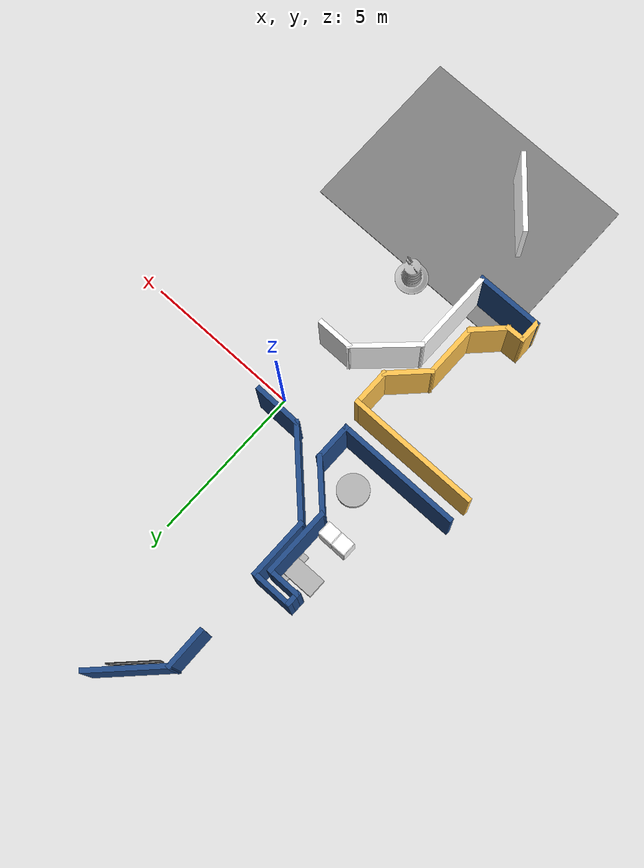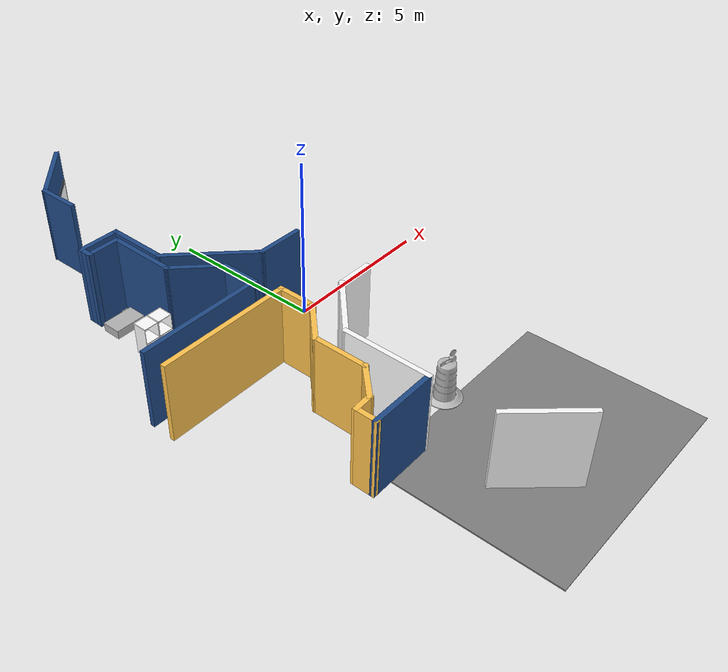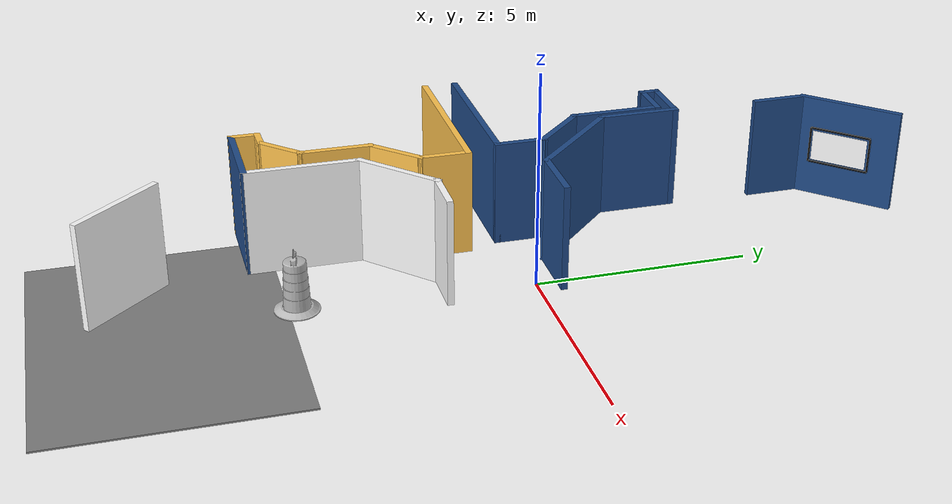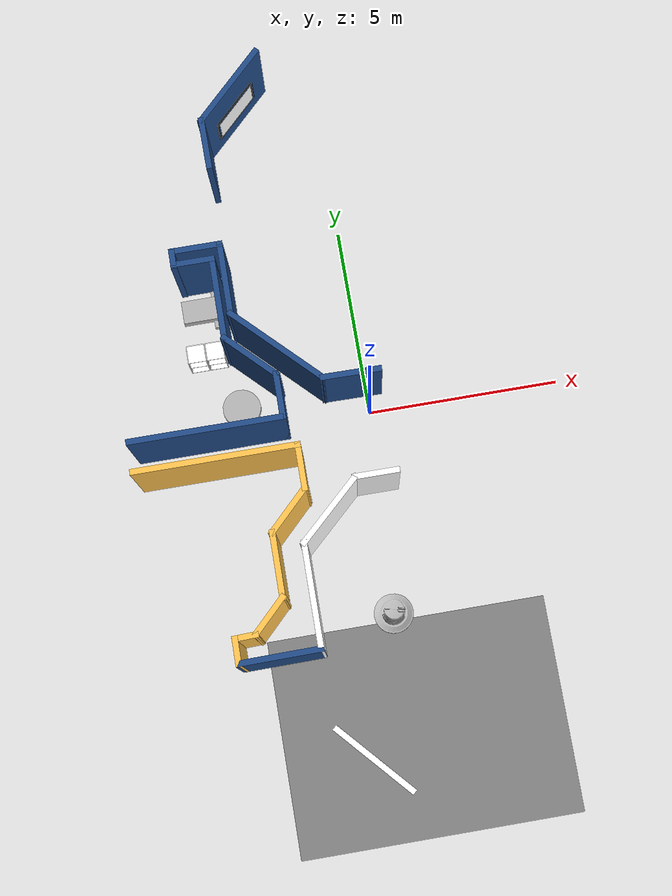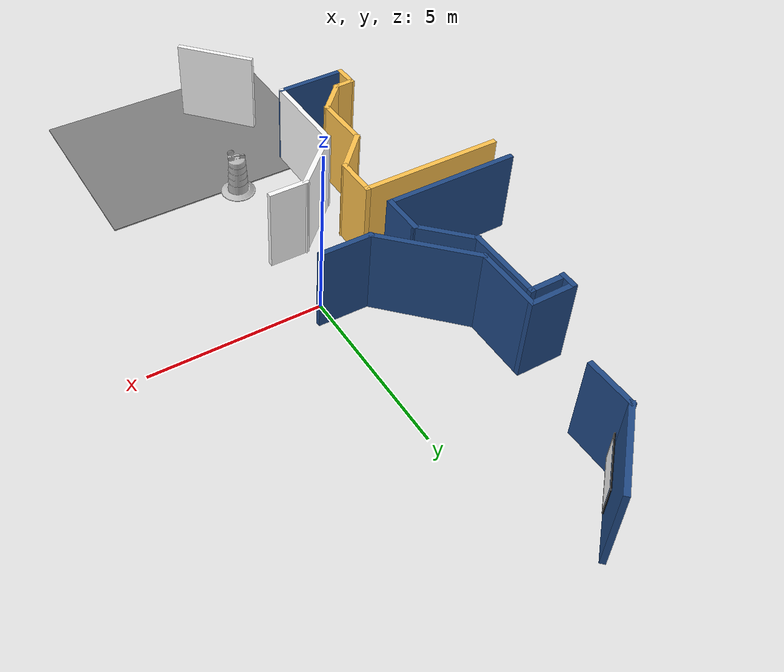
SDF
<sdf version="1.7">
 <world name="default">
  <model name="among_us_world">
   <pose>0.133216 -0.12311 0 0 -0 0</pose>
   <link name="Wall_104">
    <collision name="Wall_104_Collision">
     <geometry><box><size>4 0.15 2.5</size></box></geometry>
     <pose>0 0 1.25 0 -0 0</pose>
    </collision>
    <visual name="Wall_104_Visual">
     <pose>0 0 1.25 0 -0 0</pose>
     <geometry><box><size>4 0.15 2.5</size></box></geometry>
     <material>
      <ambient>0.12549 0.290196 0.529412 1</ambient>
      <diffuse>0.12549 0.290196 0.529412 1</diffuse>
      <specular>0.08 0.08 0.08 1</specular>
      <emissive>0 0 0 1</emissive>
      <pbr>
       <metal>
        <albedo_map>model://among_us_world/materials/textures/ceiling_tiled_32_74_135.jpg</albedo_map>
        <roughness>0.85</roughness>
        <metalness>0</metalness>
       </metal>
      </pbr>
     </material>
     <meta><layer>0</layer></meta>
    </visual>
    <pose>-4.28169 -0.147272 0 0 -0 0</pose>
   </link>
   <link name="Wall_105">
    <collision name="Wall_105_Collision">
     <geometry><box><size>1.25 0.15 2.5</size></box></geometry>
     <pose>0 0 1.25 0 -0 0</pose>
    </collision>
    <visual name="Wall_105_Visual">
     <pose>0 0 1.25 0 -0 0</pose>
     <geometry><box><size>1.25 0.15 2.5</size></box></geometry>
     <material>
      <ambient>0.12549 0.290196 0.529412 1</ambient>
      <diffuse>0.12549 0.290196 0.529412 1</diffuse>
      <specular>0.08 0.08 0.08 1</specular>
      <emissive>0 0 0 1</emissive>
      <pbr>
       <metal>
        <albedo_map>model://among_us_world/materials/textures/ceiling_tiled_32_74_135.jpg</albedo_map>
        <roughness>0.85</roughness>
        <metalness>0</metalness>
       </metal>
      </pbr>
     </material>
     <meta><layer>0</layer></meta>
    </visual>
    <pose>-2.35669 0.402728 0 0 -0 1.5708</pose>
   </link>
   <link name="Wall_106">
    <collision name="Wall_106_Collision">
     <geometry><box><size>1.75 0.15 2.5</size></box></geometry>
     <pose>0 0 1.25 0 -0 0</pose>
    </collision>
    <visual name="Wall_106_Visual">
     <pose>0 0 1.25 0 -0 0</pose>
     <geometry><box><size>1.75 0.15 2.5</size></box></geometry>
     <material>
      <ambient>0.12549 0.290196 0.529412 1</ambient>
      <diffuse>0.12549 0.290196 0.529412 1</diffuse>
      <specular>0.08 0.08 0.08 1</specular>
      <emissive>0 0 0 1</emissive>
      <pbr>
       <metal>
        <albedo_map>model://among_us_world/materials/textures/ceiling_tiled_32_74_135.jpg</albedo_map>
        <roughness>0.85</roughness>
        <metalness>0</metalness>
       </metal>
      </pbr>
     </material>
     <meta><layer>0</layer></meta>
    </visual>
    <pose>-2.92238 1.51841 0 0 -0 2.35619</pose>
   </link>
   <link name="Wall_108">
    <collision name="Wall_108_Collision">
     <geometry><box><size>2.25 0.15 2.5</size></box></geometry>
     <pose>0 0 1.25 0 -0 0</pose>
    </collision>
    <visual name="Wall_108_Visual">
     <pose>0 0 1.25 0 -0 0</pose>
     <geometry><box><size>2.25 0.15 2.5</size></box></geometry>
     <material>
      <ambient>0.12549 0.290196 0.529412 1</ambient>
      <diffuse>0.12549 0.290196 0.529412 1</diffuse>
      <specular>0.08 0.08 0.08 1</specular>
      <emissive>0 0 0 1</emissive>
      <pbr>
       <metal>
        <albedo_map>model://among_us_world/materials/textures/ceiling_tiled_32_74_135.jpg</albedo_map>
        <roughness>0.85</roughness>
        <metalness>0</metalness>
       </metal>
      </pbr>
     </material>
     <meta><layer>0</layer></meta>
    </visual>
    <pose>-3.48806 3.1341 0 0 -0 1.5708</pose>
   </link>
   <link name="Wall_109">
    <collision name="Wall_109_Collision">
     <geometry><box><size>1.12677 0.15 2.5</size></box></geometry>
     <pose>0 0 1.25 0 -0 0</pose>
    </collision>
    <visual name="Wall_109_Visual">
     <pose>0 0 1.25 0 -0 0</pose>
     <geometry><box><size>1.12677 0.15 2.5</size></box></geometry>
     <material>
      <ambient>0.12549 0.290196 0.529412 1</ambient>
      <diffuse>0.12549 0.290196 0.529412 1</diffuse>
      <specular>0.08 0.08 0.08 1</specular>
      <emissive>0 0 0 1</emissive>
      <pbr>
       <metal>
        <albedo_map>model://among_us_world/materials/textures/ceiling_tiled_32_74_135.jpg</albedo_map>
        <roughness>0.85</roughness>
        <metalness>0</metalness>
       </metal>
      </pbr>
     </material>
     <meta><layer>0</layer></meta>
    </visual>
    <pose>-3.97634 4.1841 0 0 -0 3.14159</pose>
   </link>
   <link name="Wall_110">
    <collision name="Wall_110_Collision">
     <geometry><box><size>0.5 0.15 2.5</size></box></geometry>
     <pose>0 0 1.25 0 -0 0</pose>
    </collision>
    <visual name="Wall_110_Visual">
     <pose>0 0 1.25 0 -0 0</pose>
     <geometry><box><size>0.5 0.15 2.5</size></box></geometry>
     <material>
      <ambient>0.12549 0.290196 0.529412 1</ambient>
      <diffuse>0.12549 0.290196 0.529412 1</diffuse>
      <specular>0.08 0.08 0.08 1</specular>
      <emissive>0 0 0 1</emissive>
      <pbr><metal><roughness>0.85</roughness><metalness>0</metalness></metal></pbr>
     </material>
     <meta><layer>0</layer></meta>
    </visual>
    <pose>-4.46462 4.33852 0 0 -0 1.5708</pose>
   </link>
   <link name="Wall_111">
    <collision name="Wall_111_Collision">
     <geometry><box><size>1.37673 0.15 2.5</size></box></geometry>
     <pose>0 0 1.25 0 -0 0</pose>
    </collision>
    <visual name="Wall_111_Visual">
     <pose>0 0 1.25 0 -0 0</pose>
     <geometry><box><size>1.37673 0.15 2.5</size></box></geometry>
     <material>
      <ambient>0.12549 0.290196 0.529412 1</ambient>
      <diffuse>0.12549 0.290196 0.529412 1</diffuse>
      <specular>0.08 0.08 0.08 1</specular>
      <emissive>0 0 0 1</emissive>
      <pbr>
       <metal>
        <albedo_map>model://asphalt_plane/materials/textures/tarmac.png</albedo_map>
        <roughness>0.85</roughness>
        <metalness>0</metalness>
       </metal>
      </pbr>
     </material>
     <meta><layer>0</layer></meta>
    </visual>
    <pose>-3.85134 4.5341 0 0 -0 0</pose>
   </link>
   <link name="Wall_112">
    <collision name="Wall_112_Collision">
     <geometry><box><size>2 0.15 2.5</size></box></geometry>
     <pose>0 0 1.25 0 -0 0</pose>
    </collision>
    <visual name="Wall_112_Visual">
     <pose>0 0 1.25 0 -0 0</pose>
     <geometry><box><size>2 0.15 2.5</size></box></geometry>
     <material>
      <ambient>0.12549 0.290196 0.529412 1</ambient>
      <diffuse>0.12549 0.290196 0.529412 1</diffuse>
      <specular>0.08 0.08 0.08 1</specular>
      <emissive>0 0 0 1</emissive>
      <pbr>
       <metal>
        <albedo_map>model://asphalt_plane/materials/textures/tarmac.png</albedo_map>
        <roughness>0.85</roughness>
        <metalness>0</metalness>
       </metal>
      </pbr>
     </material>
     <meta><layer>0</layer></meta>
    </visual>
    <pose>-3.23806 3.6091 0 0 -0 -1.5708</pose>
   </link>
   <link name="Wall_114">
    <collision name="Wall_114_Collision">
     <geometry><box><size>3 0.15 2.5</size></box></geometry>
     <pose>0 0 1.25 0 -0 0</pose>
    </collision>
    <visual name="Wall_114_Visual">
     <pose>0 0 1.25 0 -0 0</pose>
     <geometry><box><size>3 0.15 2.5</size></box></geometry>
     <material>
      <ambient>0.12549 0.290196 0.529412 1</ambient>
      <diffuse>0.12549 0.290196 0.529412 1</diffuse>
      <specular>0.08 0.08 0.08 1</specular>
      <emissive>0 0 0 1</emissive>
      <pbr>
       <metal>
        <albedo_map>model://asphalt_plane/materials/textures/tarmac.png</albedo_map>
        <roughness>0.85</roughness>
        <metalness>0</metalness>
       </metal>
      </pbr>
     </material>
     <meta><layer>0</layer></meta>
    </visual>
    <pose>-2.23043 1.67647 0 0 -0 -0.785398</pose>
   </link>
   <link name="Wall_115">
    <collision name="Wall_115_Collision">
     <geometry><box><size>1.5655 0.15 2.5</size></box></geometry>
     <pose>0 0 1.25 0 -0 0</pose>
    </collision>
    <visual name="Wall_115_Visual">
     <pose>0 0 1.25 0 -0 0</pose>
     <geometry><box><size>1.5655 0.15 2.5</size></box></geometry>
     <material>
      <ambient>0.12549 0.290196 0.529412 1</ambient>
      <diffuse>0.12549 0.290196 0.529412 1</diffuse>
      <specular>0.08 0.08 0.08 1</specular>
      <emissive>0 0 0 1</emissive>
      <pbr>
       <metal>
        <albedo_map>model://asphalt_plane/materials/textures/tarmac.png</albedo_map>
        <roughness>0.85</roughness>
        <metalness>0</metalness>
       </metal>
      </pbr>
     </material>
     <meta><layer>0</layer></meta>
    </visual>
    <pose>-0.515099 0.662156 0 0 -0 -0.00945</pose>
   </link>
   <link name="Wall_146">
    <collision name="Wall_146_Collision">
     <geometry><box><size>4.25 0.15 2.5</size></box></geometry>
     <pose>0 0 1.25 0 -0 0</pose>
    </collision>
    <visual name="Wall_146_Visual">
     <pose>0 0 1.25 0 -0 0</pose>
     <geometry><box><size>4.25 0.15 2.5</size></box></geometry>
     <material>
      <ambient>1 0.764706 0.305882 1</ambient>
      <diffuse>1 0.764706 0.305882 1</diffuse>
      <specular>0.08 0.08 0.08 1</specular>
      <emissive>0 0 0 1</emissive>
      <pbr>
       <metal>
        <albedo_map>model://among_us_world/materials/textures/ceiling_tiled_255_195_78.jpg</albedo_map>
        <roughness>0.85</roughness>
        <metalness>0</metalness>
       </metal>
      </pbr>
     </material>
     <meta><layer>0</layer></meta>
    </visual>
    <pose>-4.16277 -0.905283 0 0 -0 0</pose>
   </link>
   <link name="Wall_147">
    <collision name="Wall_147_Collision">
     <geometry><box><size>1.25 0.15 2.5</size></box></geometry>
     <pose>0 0 1.25 0 -0 0</pose>
    </collision>
    <visual name="Wall_147_Visual">
     <pose>0 0 1.25 0 -0 0</pose>
     <geometry><box><size>1.25 0.15 2.5</size></box></geometry>
     <material>
      <ambient>1 0.764706 0.305882 1</ambient>
      <diffuse>1 0.764706 0.305882 1</diffuse>
      <specular>0.08 0.08 0.08 1</specular>
      <emissive>0 0 0 1</emissive>
      <pbr>
       <metal>
        <albedo_map>model://among_us_world/materials/textures/ceiling_tiled_255_195_78.jpg</albedo_map>
        <roughness>0.85</roughness>
        <metalness>0</metalness>
       </metal>
      </pbr>
     </material>
     <meta><layer>0</layer></meta>
    </visual>
    <pose>-2.11277 -1.45528 0 0 -0 -1.5708</pose>
   </link>
   <link name="Wall_148">
    <collision name="Wall_148_Collision">
     <geometry><box><size>1.5 0.15 2.5</size></box></geometry>
     <pose>0 0 1.25 0 -0 0</pose>
    </collision>
    <visual name="Wall_148_Visual">
     <pose>0 0 1.25 0 -0 0</pose>
     <geometry><box><size>1.5 0.15 2.5</size></box></geometry>
     <material>
      <ambient>1 0.764706 0.305882 1</ambient>
      <diffuse>1 0.764706 0.305882 1</diffuse>
      <specular>0.08 0.08 0.08 1</specular>
      <emissive>0 0 0 1</emissive>
      <pbr>
       <metal>
        <albedo_map>model://among_us_world/materials/textures/ceiling_tiled_255_195_78.jpg</albedo_map>
        <roughness>0.85</roughness>
        <metalness>0</metalness>
       </metal>
      </pbr>
     </material>
     <meta><layer>0</layer></meta>
    </visual>
    <pose>-2.59027 -2.48228 0 0 -0 -2.35672</pose>
   </link>
   <link name="Wall_149">
    <collision name="Wall_149_Collision">
     <geometry><box><size>1.75 0.15 2.5</size></box></geometry>
     <pose>0 0 1.25 0 -0 0</pose>
    </collision>
    <visual name="Wall_149_Visual">
     <pose>0 0 1.25 0 -0 0</pose>
     <geometry><box><size>1.75 0.15 2.5</size></box></geometry>
     <material>
      <ambient>1 0.764706 0.305882 1</ambient>
      <diffuse>1 0.764706 0.305882 1</diffuse>
      <specular>0.08 0.08 0.08 1</specular>
      <emissive>0 0 0 1</emissive>
      <pbr><metal><roughness>0.85</roughness><metalness>0</metalness></metal></pbr>
     </material>
     <meta><layer>0</layer></meta>
    </visual>
    <pose>-3.06777 -3.75928 0 0 -0 -1.5708</pose>
   </link>
   <link name="Wall_150">
    <collision name="Wall_150_Collision">
     <geometry><box><size>1.25 0.15 2.5</size></box></geometry>
     <pose>0 0 1.25 0 -0 0</pose>
    </collision>
    <visual name="Wall_150_Visual">
     <pose>0 0 1.25 0 -0 0</pose>
     <geometry><box><size>1.25 0.15 2.5</size></box></geometry>
     <material>
      <ambient>1 0.764706 0.305882 1</ambient>
      <diffuse>1 0.764706 0.305882 1</diffuse>
      <specular>0.08 0.08 0.08 1</specular>
      <emissive>0 0 0 1</emissive>
      <pbr>
       <metal>
        <albedo_map>model://among_us_world/materials/textures/ceiling_tiled_255_195_78.jpg</albedo_map>
        <roughness>0.85</roughness>
        <metalness>0</metalness>
       </metal>
      </pbr>
     </material>
     <meta><layer>0</layer></meta>
    </visual>
    <pose>-3.45677 -4.94828 0 0 -0 -2.35619</pose>
   </link>
   <link name="Wall_153">
    <collision name="Wall_153_Collision">
     <geometry><box><size>0.660076 0.15 2.5</size></box></geometry>
     <pose>0 0 1.25 0 -0 0</pose>
    </collision>
    <visual name="Wall_153_Visual">
     <pose>0 0 1.25 0 -0 0</pose>
     <geometry><box><size>0.660076 0.15 2.5</size></box></geometry>
     <material>
      <ambient>1 0.764706 0.305882 1</ambient>
      <diffuse>1 0.764706 0.305882 1</diffuse>
      <specular>0.08 0.08 0.08 1</specular>
      <emissive>0 0 0 1</emissive>
      <pbr>
       <metal>
        <albedo_map>model://among_us_world/materials/textures/ceiling_tiled_255_195_78.jpg</albedo_map>
        <roughness>0.85</roughness>
        <metalness>0</metalness>
       </metal>
      </pbr>
     </material>
     <meta><layer>0</layer></meta>
    </visual>
    <pose>-4.10077 -5.34628 0 0 -0 -3.10631</pose>
   </link>
   <link name="Wall_154">
    <collision name="Wall_154_Collision">
     <geometry><box><size>0.75 0.15 2.5</size></box></geometry>
     <pose>0 0 1.25 0 -0 0</pose>
    </collision>
    <visual name="Wall_154_Visual">
     <pose>0 0 1.25 0 -0 0</pose>
     <geometry><box><size>0.75 0.15 2.5</size></box></geometry>
     <material>
      <ambient>1 0.764706 0.305882 1</ambient>
      <diffuse>1 0.764706 0.305882 1</diffuse>
      <specular>0.08 0.08 0.08 1</specular>
      <emissive>0 0 0 1</emissive>
      <pbr><metal><roughness>0.85</roughness><metalness>0</metalness></metal></pbr>
     </material>
     <meta><layer>0</layer></meta>
    </visual>
    <pose>-4.35577 -5.65528 0 0 -0 -1.5708</pose>
   </link>
   <link name="Wall_155">
    <collision name="Wall_155_Collision">
     <geometry><box><size>2.16008 0.15 2.5</size></box></geometry>
     <pose>0 0 1.25 0 -0 0</pose>
    </collision>
    <visual name="Wall_155_Visual">
     <pose>0 0 1.25 0 -0 0</pose>
     <geometry><box><size>2.16008 0.15 2.5</size></box></geometry>
     <material>
      <ambient>0.12549 0.290196 0.529412 1</ambient>
      <diffuse>0.12549 0.290196 0.529412 1</diffuse>
      <specular>0.08 0.08 0.08 1</specular>
      <emissive>0 0 0 1</emissive>
      <pbr>
       <metal>
        <albedo_map>model://asphalt_plane/materials/textures/tarmac.png</albedo_map>
        <roughness>0.85</roughness>
        <metalness>0</metalness>
       </metal>
      </pbr>
     </material>
     <meta><layer>0</layer></meta>
    </visual>
    <pose>-3.35065 -5.9463 0 0 -0 0.008937</pose>
   </link>
   <link name="Wall_156">
    <collision name="Wall_156_Collision">
     <geometry><box><size>2.75 0.15 2.5</size></box></geometry>
     <pose>0 0 1.25 0 -0 0</pose>
    </collision>
    <visual name="Wall_156_Visual">
     <pose>0 0 1.25 0 -0 0</pose>
     <geometry><box><size>2.75 0.15 2.5</size></box></geometry>
     <material>
      <ambient>1 1 1 1</ambient>
      <diffuse>1 1 1 1</diffuse>
      <specular>0.08 0.08 0.08 1</specular>
      <emissive>0 0 0 1</emissive>
      <pbr>
       <metal>
        <albedo_map>model://among_us_world/materials/textures/ceiling_tiled_85_87_83.jpg</albedo_map>
        <roughness>0.85</roughness>
        <metalness>0</metalness>
       </metal>
      </pbr>
     </material>
     <meta><layer>0</layer></meta>
    </visual>
    <pose>-2.34553 -4.63732 0 0 -0 1.5708</pose>
   </link>
   <link name="Wall_195">
    <collision name="Wall_195_Collision">
     <geometry><box><size>2.43279 0.15 2.5</size></box></geometry>
     <pose>0 0 1.25 0 -0 0</pose>
    </collision>
    <visual name="Wall_195_Visual">
     <pose>0 0 1.25 0 -0 0</pose>
     <geometry><box><size>2.43279 0.15 2.5</size></box></geometry>
     <material>
      <ambient>1 1 1 1</ambient>
      <diffuse>1 1 1 1</diffuse>
      <specular>0.08 0.08 0.08 1</specular>
      <emissive>0 0 0 1</emissive>
      <pbr>
       <metal>
        <albedo_map>model://among_us_world/materials/textures/ceiling_tiled_85_87_83.jpg</albedo_map>
        <roughness>0.85</roughness>
        <metalness>0</metalness>
       </metal>
      </pbr>
     </material>
     <meta><layer>0</layer></meta>
    </visual>
    <pose>-1.52341 -8.72218 0 0 -0 -0.835926</pose>
   </link>
   <link name="Wall_204">
    <collision name="Wall_204_Collision">
     <geometry><box><size>1.18966 0.15 2.5</size></box></geometry>
     <pose>0 0 1.25 0 -0 0</pose>
    </collision>
    <visual name="Wall_204_Visual">
     <pose>0 0 1.25 0 -0 0</pose>
     <geometry><box><size>1.18966 0.15 2.5</size></box></geometry>
     <material>
      <ambient>1 1 1 1</ambient>
      <diffuse>1 1 1 1</diffuse>
      <specular>0.08 0.08 0.08 1</specular>
      <emissive>0 0 0 1</emissive>
      <pbr>
       <metal>
        <albedo_map>model://among_us_world/materials/textures/ceiling_tiled_85_87_83.jpg</albedo_map>
        <roughness>0.85</roughness>
        <metalness>0</metalness>
       </metal>
      </pbr>
     </material>
     <meta><layer>0</layer></meta>
    </visual>
    <pose>-0.32722 -1.93701 0 0 -0 3.14</pose>
   </link>
   <link name="Wall_206">
    <collision name="Wall_206_Collision">
     <geometry><box><size>2.20149 0.15 2.5</size></box></geometry>
     <pose>0 0 1.25 0 -0 0</pose>
    </collision>
    <visual name="Wall_206_Visual">
     <pose>0 0 1.25 0 -0 0</pose>
     <geometry><box><size>2.20149 0.15 2.5</size></box></geometry>
     <material>
      <ambient>1 1 1 1</ambient>
      <diffuse>1 1 1 1</diffuse>
      <specular>0.08 0.08 0.08 1</specular>
      <emissive>0 0 0 1</emissive>
      <pbr>
       <metal>
        <albedo_map>model://among_us_world/materials/textures/ceiling_tiled_85_87_83.jpg</albedo_map>
        <roughness>0.85</roughness>
        <metalness>0</metalness>
       </metal>
      </pbr>
     </material>
     <meta><layer>0</layer></meta>
    </visual>
    <pose>-1.59629 -2.63675 0 0 -0 0.751837</pose>
   </link>
   <link name="Wall_29">
    <collision name="Wall_29_Collision">
     <geometry><box><size>2.5 0.15 2.5</size></box></geometry>
     <pose>0 0 1.25 0 -0 0</pose>
    </collision>
    <visual name="Wall_29_Visual">
     <pose>0 0 1.25 0 -0 0</pose>
     <geometry><box><size>2.5 0.15 2.5</size></box></geometry>
     <material>
      <ambient>0.12549 0.290196 0.529412 1</ambient>
      <diffuse>0.12549 0.290196 0.529412 1</diffuse>
      <specular>0.08 0.08 0.08 1</specular>
      <emissive>0 0 0 1</emissive>
      <pbr>
       <metal>
        <albedo_map>model://asphalt_plane/materials/textures/tarmac.png</albedo_map>
        <roughness>0.85</roughness>
        <metalness>0</metalness>
       </metal>
      </pbr>
     </material>
     <meta><layer>0</layer></meta>
    </visual>
    <pose>-2.37241 8.73794 0 0 -0 -2.35611</pose>
   </link>
   <link name="Wall_30">
    <collision name="Wall_30_Collision">
     <geometry><box><size>1.4062 0.15 2.5</size></box></geometry>
     <pose>0 0 1.25 0 -0 0</pose>
    </collision>
    <visual name="Wall_30_Visual">
     <pose>0 0 1.25 0 -0 0</pose>
     <geometry><box><size>1.4062 0.15 2.5</size></box></geometry>
     <material>
      <ambient>0.12549 0.290196 0.529412 1</ambient>
      <diffuse>0.12549 0.290196 0.529412 1</diffuse>
      <specular>0.08 0.08 0.08 1</specular>
      <emissive>0 0 0 1</emissive>
      <pbr>
       <metal>
        <albedo_map>model://asphalt_plane/materials/textures/tarmac.png</albedo_map>
        <roughness>0.85</roughness>
        <metalness>0</metalness>
       </metal>
      </pbr>
     </material>
     <meta><layer>0</layer></meta>
    </visual>
    <pose>-3.19527 7.27912 0 0 -0 -1.55841</pose>
   </link>
   <static>1</static>
  </model>
  <model name="Construction Barrel">
   <static>0</static>
   <link name="link">
    <inertial>
     <pose>0 0 0.4 0 -0 0</pose>
     <mass>8</mass>
     <inertia><ixx>0.64</ixx><iyy>0.64</iyy><izz>0.64</izz><ixy>0</ixy><ixz>0</ixz><iyz>0</iyz></inertia>
    </inertial>
    <collision name="collision">
     <pose>0 0 0.32 0 0 0</pose>
     <geometry><cylinder><radius>0.16</radius><length>0.64</length></cylinder></geometry>
     <surface><friction><ode><mu>1.0</mu><mu2>1.0</mu2></ode></friction></surface>
     <max_contacts>20</max_contacts>
    </collision>
    <visual name="visual">
     <geometry><mesh><uri>model://construction_barrel/meshes/construction_barrel.dae</uri></mesh></geometry>
    </visual>
   </link>
   <pose>-0.274787 -5.3139 0.00999 1e-06 -0 -0.237848</pose>
  </model>
  <model name="asphalt_tile_00_02">
   <static>1</static>
   <pose>0.000 -8.250 -0.020 0 -0 0</pose>
   <link name="link">
    <collision name="collision"><geometry><box><size>7.200 5.500 0.040</size></box></geometry></collision>
    <visual name="visual">
     <cast_shadows>0</cast_shadows>
     <geometry><box><size>7.200 5.500 0.040</size></box></geometry>
     <material>
      <ambient>0.5 0.5 0.5 1</ambient>
      <diffuse>0.5 0.5 0.5 1</diffuse>
      <specular>0.2 0.2 0.2 1</specular>
      <emissive>0 0 0 1</emissive>
      <pbr>
       <metal>
        <albedo_map>model://asphalt_plane/materials/textures/tarmac.png</albedo_map>
        <roughness>0.85</roughness>
        <metalness>0</metalness>
       </metal>
      </pbr>
     </material>
    </visual>
   </link>
  </model>
  <model name="football_diagonal_picture_c2">
   <static>1</static>
   <pose>-2.195 8.423 1.350 0 -0 0.785483</pose>
   <link name="link">
    <visual name="photo">
     <pose>0 -0.055 0 1.5708 0 0</pose>
     <geometry><plane><normal>0 0 1</normal><size>1.35 0.76</size></plane></geometry>
     <material>
      <ambient>1 1 1 1</ambient>
      <diffuse>1 1 1 1</diffuse>
      <specular>0 0 0 1</specular>
      <emissive>0.8 0.8 0.8 1</emissive>
      <pbr>
       <metal>
        <albedo_map>file:///home/manza/Desktop/hackaton/RobotechVirtualChallenge/src/ros2_bringup/worlds/models/among_us_world/materials/textures/rt.png</albedo_map>
        <emissive_map>file:///home/manza/Desktop/hackaton/RobotechVirtualChallenge/src/ros2_bringup/worlds/models/among_us_world/materials/textures/rt.png</emissive_map>
        <roughness>0.5</roughness>
        <metalness>0</metalness>
       </metal>
      </pbr>
     </material>
    </visual>
    <visual name="frame_top">
     <pose>0 -0.035 0.440 0 -0 0</pose>
     <geometry><box><size>1.47 0.035 0.045</size></box></geometry>
     <material>
      <ambient>0.02 0.02 0.02 1</ambient>
      <diffuse>0.02 0.02 0.02 1</diffuse>
      <specular>0.02 0.02 0.02 1</specular>
     </material>
    </visual>
    <visual name="frame_bottom">
     <pose>0 -0.035 -0.440 0 -0 0</pose>
     <geometry><box><size>1.47 0.035 0.045</size></box></geometry>
     <material>
      <ambient>0.02 0.02 0.02 1</ambient>
      <diffuse>0.02 0.02 0.02 1</diffuse>
      <specular>0.02 0.02 0.02 1</specular>
     </material>
    </visual>
    <visual name="frame_left">
     <pose>-0.735 -0.035 0 0 -0 0</pose>
     <geometry><box><size>0.045 0.035 0.88</size></box></geometry>
     <material>
      <ambient>0.02 0.02 0.02 1</ambient>
      <diffuse>0.02 0.02 0.02 1</diffuse>
      <specular>0.02 0.02 0.02 1</specular>
     </material>
    </visual>
    <visual name="frame_right">
     <pose>0.735 -0.035 0 0 -0 0</pose>
     <geometry><box><size>0.045 0.035 0.88</size></box></geometry>
     <material>
      <ambient>0.02 0.02 0.02 1</ambient>
      <diffuse>0.02 0.02 0.02 1</diffuse>
      <specular>0.02 0.02 0.02 1</specular>
     </material>
    </visual>
   </link>
  </model>
  <model name="football_diagonal_picture_c3">
   <static>1</static>
   <pose>-2.053 1.412 1.350 0 -0 2.356195</pose>
   <link name="link">
    <visual name="photo">
     <pose>0 -0.055 0 1.5708 0 0</pose>
     <geometry><plane><normal>0 0 1</normal><size>1.35 0.76</size></plane></geometry>
     <material>
      <ambient>1 1 1 1</ambient>
      <diffuse>1 1 1 1</diffuse>
      <specular>0 0 0 1</specular>
      <emissive>0.8 0.8 0.8 1</emissive>
      <pbr>
       <metal>
        <albedo_map>file:///home/manza/Desktop/hackaton/RobotechVirtualChallenge/src/ros2_bringup/worlds/models/among_us_world/materials/textures/seeknhack.png</albedo_map>
        <emissive_map>file:///home/manza/Desktop/hackaton/RobotechVirtualChallenge/src/ros2_bringup/worlds/models/among_us_world/materials/textures/seeknhack.png</emissive_map>
        <roughness>0.5</roughness>
        <metalness>0</metalness>
       </metal>
      </pbr>
     </material>
    </visual>
    <visual name="frame_top">
     <pose>0 -0.035 0.440 0 -0 0</pose>
     <geometry><box><size>1.47 0.035 0.045</size></box></geometry>
     <material>
      <ambient>0.02 0.02 0.02 1</ambient>
      <diffuse>0.02 0.02 0.02 1</diffuse>
      <specular>0.02 0.02 0.02 1</specular>
     </material>
    </visual>
    <visual name="frame_bottom">
     <pose>0 -0.035 -0.440 0 -0 0</pose>
     <geometry><box><size>1.47 0.035 0.045</size></box></geometry>
     <material>
      <ambient>0.02 0.02 0.02 1</ambient>
      <diffuse>0.02 0.02 0.02 1</diffuse>
      <specular>0.02 0.02 0.02 1</specular>
     </material>
    </visual>
    <visual name="frame_left">
     <pose>-0.735 -0.035 0 0 -0 0</pose>
     <geometry><box><size>0.045 0.035 0.88</size></box></geometry>
     <material>
      <ambient>0.02 0.02 0.02 1</ambient>
      <diffuse>0.02 0.02 0.02 1</diffuse>
      <specular>0.02 0.02 0.02 1</specular>
     </material>
    </visual>
    <visual name="frame_right">
     <pose>0.735 -0.035 0 0 -0 0</pose>
     <geometry><box><size>0.045 0.035 0.88</size></box></geometry>
     <material>
      <ambient>0.02 0.02 0.02 1</ambient>
      <diffuse>0.02 0.02 0.02 1</diffuse>
      <specular>0.02 0.02 0.02 1</specular>
     </material>
    </visual>
   </link>
  </model>
  <model name="bed_clone_0">
   <link name="link_1">
    <inertial>
     <mass>0.166557</mass>
     <inertia>
      <ixx>0.00618823</ixx>
      <ixy>0</ixy>
      <ixz>0</ixz>
      <iyy>0.0149173</iyy>
      <iyz>0</iyz>
      <izz>0.0190304</izz>
     </inertia>
    </inertial>
    <pose>0.268517 -0.007523 0.053425 0 -0 0</pose>
    <visual name="visual">
     <geometry><box><size>1 0.609172 0.273416</size></box></geometry>
     <material>
      <ambient>0.7 0.7 0.7 1</ambient>
      <diffuse>0.7 0.7 0.7 1</diffuse>
      <specular>0.08 0.08 0.08 1</specular>
      <emissive>0 0 0 1</emissive>
      <pbr><metal><roughness>0.8</roughness><metalness>0</metalness></metal></pbr>
     </material>
    </visual>
    <collision name="collision">
     <geometry><box><size>1 0.609172 0.273416</size></box></geometry>
     <surface>
      <friction>
       <ode><mu>1</mu><mu2>1</mu2><fdir1>0 0 0</fdir1><slip1>0</slip1><slip2>0</slip2></ode>
       <torsional>
        <coefficient>1</coefficient>
        <patch_radius>0</patch_radius>
        <surface_radius>0</surface_radius>
        <use_patch_radius>1</use_patch_radius>
        <ode><slip>0</slip></ode>
       </torsional>
      </friction>
      <bounce><restitution_coefficient>0</restitution_coefficient><threshold>1e+06</threshold></bounce>
      <contact>
       <collide_without_contact>0</collide_without_contact>
       <collide_without_contact_bitmask>1</collide_without_contact_bitmask>
       <collide_bitmask>1</collide_bitmask>
       <ode>
        <soft_cfm>0</soft_cfm>
        <soft_erp>0.2</soft_erp>
        <kp>1e+13</kp>
        <kd>1</kd>
        <max_vel>0.01</max_vel>
        <min_depth>0</min_depth>
       </ode>
       <bullet>
        <split_impulse>1</split_impulse>
        <split_impulse_penetration_threshold>-0.01</split_impulse_penetration_threshold>
        <soft_cfm>0</soft_cfm>
        <soft_erp>0.2</soft_erp>
        <kp>1e+13</kp>
        <kd>1</kd>
       </bullet>
      </contact>
     </surface>
    </collision>
   </link>
   <link name="link_2">
    <inertial>
     <mass>0.00661892</mass>
     <inertia>
      <ixx>3.651e-05</ixx>
      <ixy>0</ixy>
      <ixz>0</ixz>
      <iyy>3.722e-05</iyy>
      <iyz>0</iyz>
      <izz>4.631e-05</izz>
     </inertia>
    </inertial>
    <pose>-0.144333 -0.400103 -0.02691 0 -0 0</pose>
    <visual name="visual">
     <geometry><box><size>0.206441 0.203314 0.157681</size></box></geometry>
     <material>
      <ambient>0.7 0.7 0.7 1</ambient>
      <diffuse>0.7 0.7 0.7 1</diffuse>
      <specular>0.08 0.08 0.08 1</specular>
      <emissive>0 0 0 1</emissive>
      <pbr><metal><roughness>0.8</roughness><metalness>0</metalness></metal></pbr>
     </material>
    </visual>
    <collision name="collision">
     <geometry><box><size>0.206441 0.203314 0.157681</size></box></geometry>
     <surface>
      <friction>
       <ode><mu>1</mu><mu2>1</mu2><fdir1>0 0 0</fdir1><slip1>0</slip1><slip2>0</slip2></ode>
       <torsional>
        <coefficient>1</coefficient>
        <patch_radius>0</patch_radius>
        <surface_radius>0</surface_radius>
        <use_patch_radius>1</use_patch_radius>
        <ode><slip>0</slip></ode>
       </torsional>
      </friction>
      <bounce><restitution_coefficient>0</restitution_coefficient><threshold>1e+06</threshold></bounce>
      <contact>
       <collide_without_contact>0</collide_without_contact>
       <collide_without_contact_bitmask>1</collide_without_contact_bitmask>
       <collide_bitmask>1</collide_bitmask>
       <ode>
        <soft_cfm>0</soft_cfm>
        <soft_erp>0.2</soft_erp>
        <kp>1e+13</kp>
        <kd>1</kd>
        <max_vel>0.01</max_vel>
        <min_depth>0</min_depth>
       </ode>
       <bullet>
        <split_impulse>1</split_impulse>
        <split_impulse_penetration_threshold>-0.01</split_impulse_penetration_threshold>
        <soft_cfm>0</soft_cfm>
        <soft_erp>0.2</soft_erp>
        <kp>1e+13</kp>
        <kd>1</kd>
       </bullet>
      </contact>
     </surface>
    </collision>
   </link>
   <link name="link_2_clone">
    <inertial>
     <mass>0.00661892</mass>
     <inertia>
      <ixx>3.651e-05</ixx>
      <ixy>0</ixy>
      <ixz>0</ixz>
      <iyy>3.722e-05</iyy>
      <iyz>0</iyz>
      <izz>4.631e-05</izz>
     </inertia>
    </inertial>
    <pose>-0.124183 0.407627 -0.026515 0 -0 0</pose>
    <visual name="visual">
     <geometry><box><size>0.206441 0.203314 0.157681</size></box></geometry>
     <material>
      <ambient>0.7 0.7 0.7 1</ambient>
      <diffuse>0.7 0.7 0.7 1</diffuse>
      <specular>0.08 0.08 0.08 1</specular>
      <emissive>0 0 0 1</emissive>
      <pbr><metal><roughness>0.8</roughness><metalness>0</metalness></metal></pbr>
     </material>
    </visual>
    <collision name="collision">
     <geometry><box><size>0.206441 0.203314 0.157681</size></box></geometry>
     <surface>
      <friction>
       <ode><mu>1</mu><mu2>1</mu2><fdir1>0 0 0</fdir1><slip1>0</slip1><slip2>0</slip2></ode>
       <torsional>
        <coefficient>1</coefficient>
        <patch_radius>0</patch_radius>
        <surface_radius>0</surface_radius>
        <use_patch_radius>1</use_patch_radius>
        <ode><slip>0</slip></ode>
       </torsional>
      </friction>
      <bounce><restitution_coefficient>0</restitution_coefficient><threshold>1e+06</threshold></bounce>
      <contact>
       <collide_without_contact>0</collide_without_contact>
       <collide_without_contact_bitmask>1</collide_without_contact_bitmask>
       <collide_bitmask>1</collide_bitmask>
       <ode>
        <soft_cfm>0</soft_cfm>
        <soft_erp>0.2</soft_erp>
        <kp>1e+13</kp>
        <kd>1</kd>
        <max_vel>0.01</max_vel>
        <min_depth>0</min_depth>
       </ode>
       <bullet>
        <split_impulse>1</split_impulse>
        <split_impulse_penetration_threshold>-0.01</split_impulse_penetration_threshold>
        <soft_cfm>0</soft_cfm>
        <soft_erp>0.2</soft_erp>
        <kp>1e+13</kp>
        <kd>1</kd>
       </bullet>
      </contact>
     </surface>
    </collision>
   </link>
   <static>1</static>
   <pose>-3.68143 3.45279 0.093275 2.7e-05 0 -3.13537</pose>
  </model>
  <model name="cabinet">
   <static>1</static>
   <link name="cabinet_bottom_plate">
    <inertial>
     <pose>0 0 -1 0 -0 0</pose>
     <inertia><ixx>2.05</ixx><ixy>0</ixy><ixz>0</ixz><iyy>2.05</iyy><iyz>0</iyz><izz>2.05</izz></inertia>
     <mass>25</mass>
    </inertial>
    <collision name="cabinet_bottom_plate_geom">
     <pose>0 0 0.01 0 -0 0</pose>
     <geometry><box><size>0.45 0.45 0.02</size></box></geometry>
    </collision>
    <visual name="cabinet_bottom_plate_geom_visual">
     <pose>0 0 0.01 0 -0 0</pose>
     <geometry><box><size>0.45 0.45 0.02</size></box></geometry>
     <material>
      <ambient>1 1 1 1</ambient>
      <diffuse>1 1 1 1</diffuse>
      <specular>0.08 0.08 0.08 1</specular>
      <emissive>0 0 0 1</emissive>
      <pbr>
       <metal>
        <albedo_map>model://among_us_world/materials/textures/legacy_wood.jpg</albedo_map>
        <roughness>0.62</roughness>
        <metalness>0</metalness>
       </metal>
      </pbr>
     </material>
    </visual>
    <collision name="cabinet_bottom_plate_geom_cabinet_back_plate">
     <pose>0.235 0 0.51 0 -0 0</pose>
     <geometry><box><size>0.02 0.45 1.02</size></box></geometry>
    </collision>
    <visual name="cabinet_bottom_plate_geom_cabinet_back_plate_visual">
     <pose>0.235 0 0.51 0 -0 0</pose>
     <geometry><box><size>0.02 0.45 1.02</size></box></geometry>
     <material>
      <ambient>1 1 1 1</ambient>
      <diffuse>1 1 1 1</diffuse>
      <specular>0.08 0.08 0.08 1</specular>
      <emissive>0 0 0 1</emissive>
      <pbr>
       <metal>
        <albedo_map>model://among_us_world/materials/textures/legacy_wood.jpg</albedo_map>
        <roughness>0.62</roughness>
        <metalness>0</metalness>
       </metal>
      </pbr>
     </material>
    </visual>
    <collision name="cabinet_bottom_plate_geom_cabinet_left_plate">
     <pose>0 0.235 0.51 0 -0 0</pose>
     <geometry><box><size>0.45 0.02 1.02</size></box></geometry>
    </collision>
    <visual name="cabinet_bottom_plate_geom_cabinet_left_plate_visual">
     <pose>0 0.235 0.51 0 -0 0</pose>
     <geometry><box><size>0.45 0.02 1.02</size></box></geometry>
     <material>
      <ambient>1 1 1 1</ambient>
      <diffuse>1 1 1 1</diffuse>
      <specular>0.08 0.08 0.08 1</specular>
      <emissive>0 0 0 1</emissive>
      <pbr>
       <metal>
        <albedo_map>model://among_us_world/materials/textures/legacy_wood.jpg</albedo_map>
        <roughness>0.62</roughness>
        <metalness>0</metalness>
       </metal>
      </pbr>
     </material>
    </visual>
    <collision name="cabinet_bottom_plate_geom_cabinet_middle_plate">
     <pose>0 0 0.51 0 -0 0</pose>
     <geometry><box><size>0.45 0.45 0.02</size></box></geometry>
    </collision>
    <visual name="cabinet_bottom_plate_geom_cabinet_middle_plate_visual">
     <pose>0 0 0.51 0 -0 0</pose>
     <geometry><box><size>0.45 0.45 0.02</size></box></geometry>
     <material>
      <ambient>1 1 1 1</ambient>
      <diffuse>1 1 1 1</diffuse>
      <specular>0.08 0.08 0.08 1</specular>
      <emissive>0 0 0 1</emissive>
      <pbr>
       <metal>
        <albedo_map>model://among_us_world/materials/textures/legacy_wood.jpg</albedo_map>
        <roughness>0.62</roughness>
        <metalness>0</metalness>
       </metal>
      </pbr>
     </material>
    </visual>
    <collision name="cabinet_bottom_plate_geom_cabinet_right_plate">
     <pose>0 -0.235 0.51 0 -0 0</pose>
     <geometry><box><size>0.45 0.02 1.02</size></box></geometry>
    </collision>
    <visual name="cabinet_bottom_plate_geom_cabinet_right_plate_visual">
     <pose>0 -0.235 0.51 0 -0 0</pose>
     <geometry><box><size>0.45 0.02 1.02</size></box></geometry>
     <material>
      <ambient>1 1 1 1</ambient>
      <diffuse>1 1 1 1</diffuse>
      <specular>0.08 0.08 0.08 1</specular>
      <emissive>0 0 0 1</emissive>
      <pbr>
       <metal>
        <albedo_map>model://among_us_world/materials/textures/legacy_wood.jpg</albedo_map>
        <roughness>0.62</roughness>
        <metalness>0</metalness>
       </metal>
      </pbr>
     </material>
    </visual>
    <collision name="cabinet_bottom_plate_geom_cabinet_top_plate">
     <pose>0 0 1.01 0 -0 0</pose>
     <geometry><box><size>0.45 0.45 0.02</size></box></geometry>
    </collision>
    <visual name="cabinet_bottom_plate_geom_cabinet_top_plate_visual">
     <pose>0 0 1.01 0 -0 0</pose>
     <geometry><box><size>0.45 0.45 0.02</size></box></geometry>
     <material>
      <ambient>1 1 1 1</ambient>
      <diffuse>1 1 1 1</diffuse>
      <specular>0.08 0.08 0.08 1</specular>
      <emissive>0 0 0 1</emissive>
      <pbr>
       <metal>
        <albedo_map>model://among_us_world/materials/textures/legacy_wood.jpg</albedo_map>
        <roughness>0.62</roughness>
        <metalness>0</metalness>
       </metal>
      </pbr>
     </material>
    </visual>
   </link>
   <pose>-3.71836 2.07896 0 0 -0 1.57</pose>
  </model>
  <model name="cabinet_clone_1">
   <static>1</static>
   <link name="cabinet_bottom_plate">
    <inertial>
     <pose>0 0 -1 0 -0 0</pose>
     <inertia><ixx>2.05</ixx><ixy>0</ixy><ixz>0</ixz><iyy>2.05</iyy><iyz>0</iyz><izz>2.05</izz></inertia>
     <mass>25</mass>
    </inertial>
    <collision name="cabinet_bottom_plate_geom">
     <pose>0 0 0.01 0 -0 0</pose>
     <geometry><box><size>0.45 0.45 0.02</size></box></geometry>
    </collision>
    <visual name="cabinet_bottom_plate_geom_visual">
     <pose>0 0 0.01 0 -0 0</pose>
     <geometry><box><size>0.45 0.45 0.02</size></box></geometry>
     <material>
      <ambient>1 1 1 1</ambient>
      <diffuse>1 1 1 1</diffuse>
      <specular>0.08 0.08 0.08 1</specular>
      <emissive>0 0 0 1</emissive>
      <pbr>
       <metal>
        <albedo_map>model://among_us_world/materials/textures/legacy_wood.jpg</albedo_map>
        <roughness>0.62</roughness>
        <metalness>0</metalness>
       </metal>
      </pbr>
     </material>
    </visual>
    <collision name="cabinet_bottom_plate_geom_cabinet_back_plate">
     <pose>0.235 0 0.51 0 -0 0</pose>
     <geometry><box><size>0.02 0.45 1.02</size></box></geometry>
    </collision>
    <visual name="cabinet_bottom_plate_geom_cabinet_back_plate_visual">
     <pose>0.235 0 0.51 0 -0 0</pose>
     <geometry><box><size>0.02 0.45 1.02</size></box></geometry>
     <material>
      <ambient>1 1 1 1</ambient>
      <diffuse>1 1 1 1</diffuse>
      <specular>0.08 0.08 0.08 1</specular>
      <emissive>0 0 0 1</emissive>
      <pbr>
       <metal>
        <albedo_map>model://among_us_world/materials/textures/legacy_wood.jpg</albedo_map>
        <roughness>0.62</roughness>
        <metalness>0</metalness>
       </metal>
      </pbr>
     </material>
    </visual>
    <collision name="cabinet_bottom_plate_geom_cabinet_left_plate">
     <pose>0 0.235 0.51 0 -0 0</pose>
     <geometry><box><size>0.45 0.02 1.02</size></box></geometry>
    </collision>
    <visual name="cabinet_bottom_plate_geom_cabinet_left_plate_visual">
     <pose>0 0.235 0.51 0 -0 0</pose>
     <geometry><box><size>0.45 0.02 1.02</size></box></geometry>
     <material>
      <ambient>1 1 1 1</ambient>
      <diffuse>1 1 1 1</diffuse>
      <specular>0.08 0.08 0.08 1</specular>
      <emissive>0 0 0 1</emissive>
      <pbr>
       <metal>
        <albedo_map>model://among_us_world/materials/textures/legacy_wood.jpg</albedo_map>
        <roughness>0.62</roughness>
        <metalness>0</metalness>
       </metal>
      </pbr>
     </material>
    </visual>
    <collision name="cabinet_bottom_plate_geom_cabinet_middle_plate">
     <pose>0 0 0.51 0 -0 0</pose>
     <geometry><box><size>0.45 0.45 0.02</size></box></geometry>
    </collision>
    <visual name="cabinet_bottom_plate_geom_cabinet_middle_plate_visual">
     <pose>0 0 0.51 0 -0 0</pose>
     <geometry><box><size>0.45 0.45 0.02</size></box></geometry>
     <material>
      <ambient>1 1 1 1</ambient>
      <diffuse>1 1 1 1</diffuse>
      <specular>0.08 0.08 0.08 1</specular>
      <emissive>0 0 0 1</emissive>
      <pbr>
       <metal>
        <albedo_map>model://among_us_world/materials/textures/legacy_wood.jpg</albedo_map>
        <roughness>0.62</roughness>
        <metalness>0</metalness>
       </metal>
      </pbr>
     </material>
    </visual>
    <collision name="cabinet_bottom_plate_geom_cabinet_right_plate">
     <pose>0 -0.235 0.51 0 -0 0</pose>
     <geometry><box><size>0.45 0.02 1.02</size></box></geometry>
    </collision>
    <visual name="cabinet_bottom_plate_geom_cabinet_right_plate_visual">
     <pose>0 -0.235 0.51 0 -0 0</pose>
     <geometry><box><size>0.45 0.02 1.02</size></box></geometry>
     <material>
      <ambient>1 1 1 1</ambient>
      <diffuse>1 1 1 1</diffuse>
      <specular>0.08 0.08 0.08 1</specular>
      <emissive>0 0 0 1</emissive>
      <pbr>
       <metal>
        <albedo_map>model://among_us_world/materials/textures/legacy_wood.jpg</albedo_map>
        <roughness>0.62</roughness>
        <metalness>0</metalness>
       </metal>
      </pbr>
     </material>
    </visual>
    <collision name="cabinet_bottom_plate_geom_cabinet_top_plate">
     <pose>0 0 1.01 0 -0 0</pose>
     <geometry><box><size>0.45 0.45 0.02</size></box></geometry>
    </collision>
    <visual name="cabinet_bottom_plate_geom_cabinet_top_plate_visual">
     <pose>0 0 1.01 0 -0 0</pose>
     <geometry><box><size>0.45 0.45 0.02</size></box></geometry>
     <material>
      <ambient>1 1 1 1</ambient>
      <diffuse>1 1 1 1</diffuse>
      <specular>0.08 0.08 0.08 1</specular>
      <emissive>0 0 0 1</emissive>
      <pbr>
       <metal>
        <albedo_map>model://among_us_world/materials/textures/legacy_wood.jpg</albedo_map>
        <roughness>0.62</roughness>
        <metalness>0</metalness>
       </metal>
      </pbr>
     </material>
    </visual>
   </link>
   <pose>-4.20863 2.07845 0 0 -0 1.57</pose>
  </model>
  <model name="unit_cylinder_0">
   <pose>-3.29507 0.643046 0.110467 -3e-06 -3e-06 0</pose>
   <link name="link">
    <inertial>
     <mass>1</mass>
     <inertia><ixx>0.145833</ixx><ixy>0</ixy><ixz>0</ixz><iyy>0.145833</iyy><iyz>0</iyz><izz>0.125</izz></inertia>
    </inertial>
    <collision name="collision">
     <geometry><cylinder><radius>0.5</radius><length>0.200944</length></cylinder></geometry>
    </collision>
    <visual name="visual">
     <geometry><cylinder><radius>0.5</radius><length>0.200944</length></cylinder></geometry>
     <material>
      <ambient>0.7 0.7 0.7 1</ambient>
      <diffuse>0.7 0.7 0.7 1</diffuse>
      <specular>0.08 0.08 0.08 1</specular>
      <emissive>0 0 0 1</emissive>
      <pbr><metal><roughness>0.8</roughness><metalness>0</metalness></metal></pbr>
     </material>
    </visual>
   </link>
  </model>
 </world>
</sdf>
